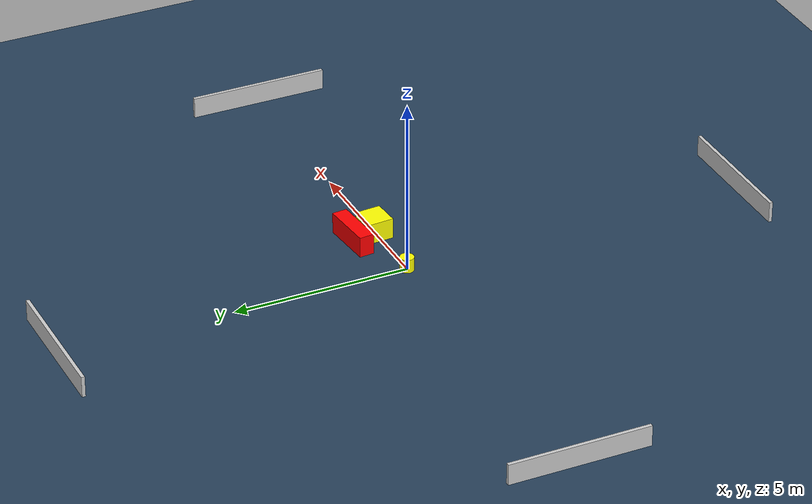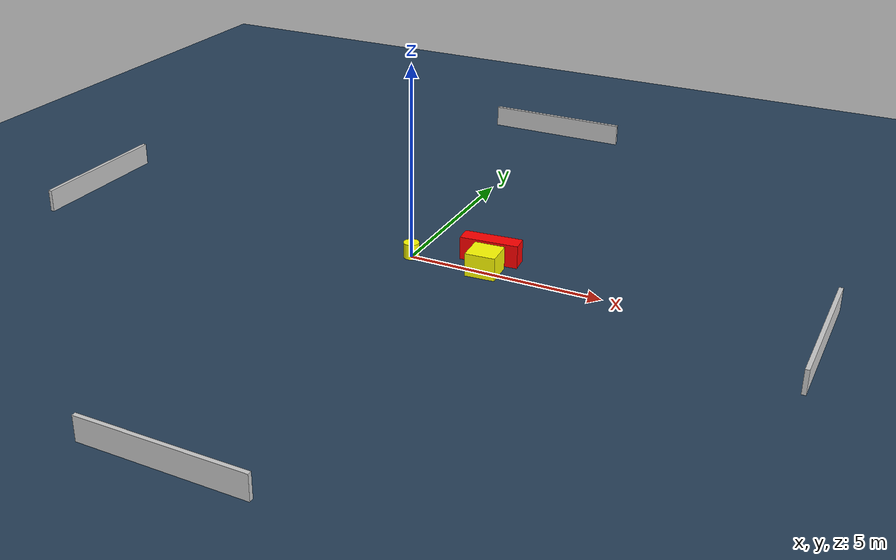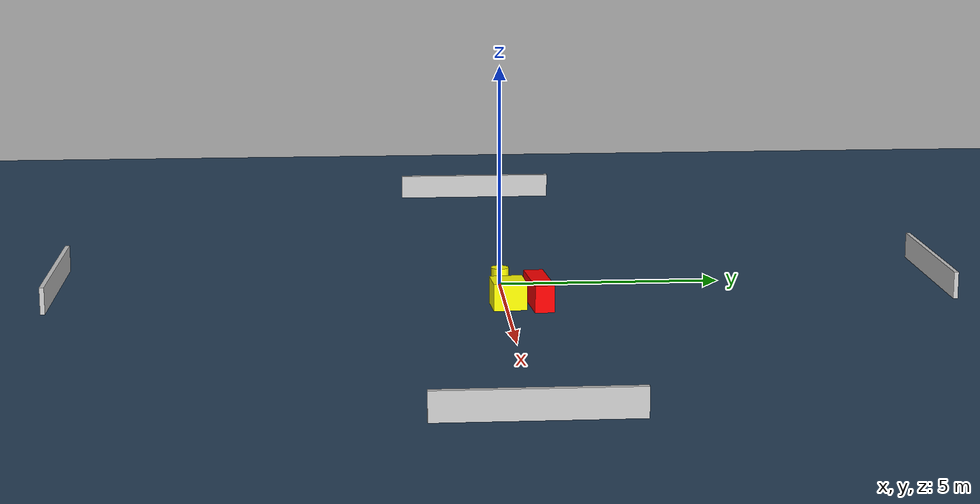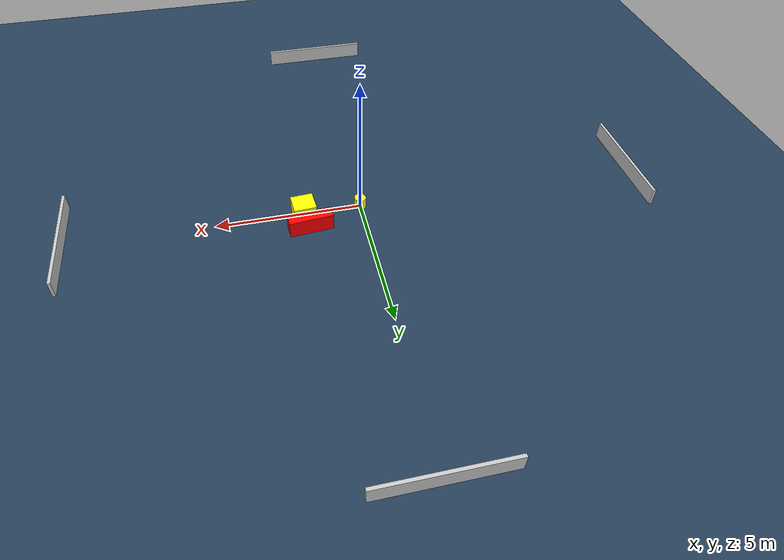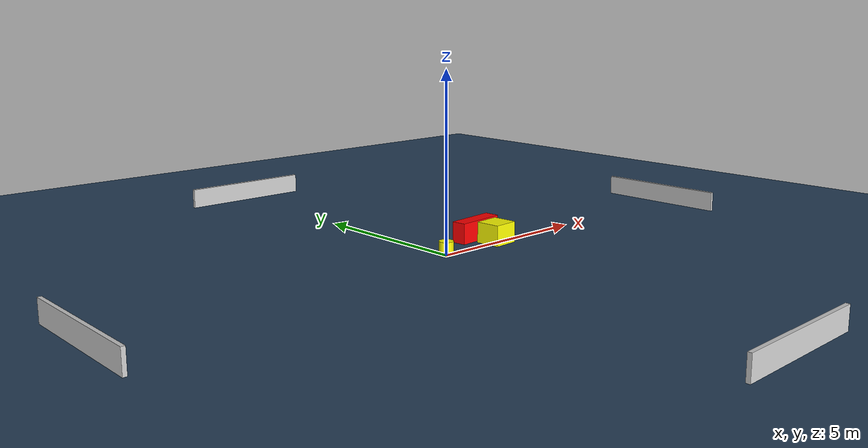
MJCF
<?xml version="1.0" ?>
<mujoco model="generated_environment">
  <option timestep="0.01" integrator="RK4" cone="elliptic"/>
  <default>
    <geom density="1"/>
  </default>
  <asset>
    <texture builtin="gradient" height="3072" name="skybox" rgb1="0.3 0.5 0.7" rgb2="0 0 0" type="skybox" width="512"/>
    <texture builtin="checker" height="300" name="groundplane" rgb1="0.2 0.3 0.4" rgb2="0.1 0.2 0.3" type="2d" width="300"/>
    <material name="groundplane" reflectance="0.2" texrepeat="5 5" texture="groundplane"/>
  </asset>
  <worldbody>
    <light dir="0 0 -1" directional="true" pos="0 0 1.5"/>
    <geom condim="3" friction="0.5 0.005 0.001" material="groundplane" name="floor" pos="0 0 0" size="0 0 0.05" type="plane"/>
    <body name="walls">
      <geom name="wall_1" condim="4" pos="-10.0 0.0 0.3" rgba="0.800000011920929 0.800000011920929 0.800000011920929 1.0" size="0.05 2.0 0.3" type="box"/>
      <geom name="wall_2" condim="4" pos="10.0 0.0 0.3" rgba="0.800000011920929 0.800000011920929 0.800000011920929 1.0" size="0.05 2.0 0.3" type="box"/>
      <geom name="wall_3" condim="4" pos="0.0 -10.0 0.3" rgba="0.800000011920929 0.800000011920929 0.800000011920929 1.0" size="2.0 0.05 0.3" type="box"/>
      <geom name="wall_4" condim="4" pos="0.0 10.0 0.3" rgba="0.800000011920929 0.800000011920929 0.800000011920929 1.0" size="2.0 0.05 0.3" type="box"/>
    </body>
    <body name="robot">
      <joint name="joint_x" type="slide" pos="0 0 0" axis="1 0 0"/>
      <joint name="joint_y" type="slide" pos="0 0 0" axis="0 1 0"/>
      <geom name="robot" type="cylinder" pos="0.0 0.0 0.2" size="0.2 0.2 0.0" mass="5.0" friction="1.0 0.005 0.0001" condim="4" rgba="1.0 1.0 0.0 1.0"/>
    </body>
    <body name="obstacle_1_movable">
      <geom name="obstacle_1_movable" condim="4" pos="1.9872290550824487 0.04039717607389875 0.3" euler="0 0 273.96041302911186" friction="0.0 0.005 0.001" rgba="1.0 1.0 0.0 1.0" size="0.364943307746591 0.38503493493189733 0.3" type="box" mass="0.1"/>
      <joint type="free"/>
    </body>
    <body name="obstacle_2_static">
      <geom name="obstacle_2_static" condim="4" pos="1.8530496375728494 0.731077644077342 0.3" euler="0 0 95.17835473681868" friction="0.0 0.005 0.001" rgba="1.0 0.0 0.0 1.0" size="0.21680493305539866 0.7489087006977477 0.3" type="box"/>
    </body>
  </worldbody>
  <actuator>
    <motor name="actuator_x" joint="joint_x" gear="1" ctrlrange="-1 1"/>
    <motor name="actuator_y" joint="joint_y" gear="1" ctrlrange="-1 1"/>
  </actuator>
</mujoco>
